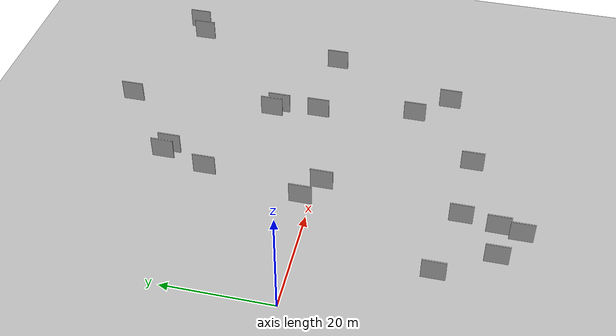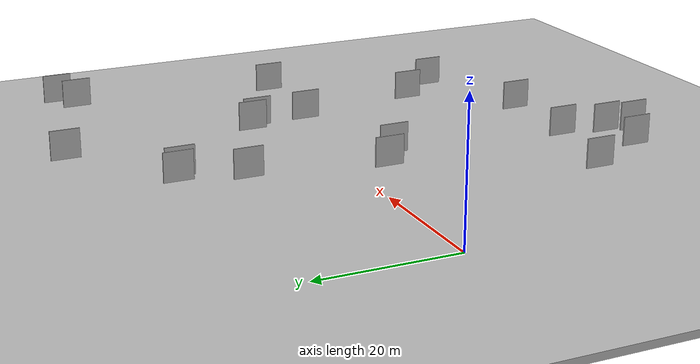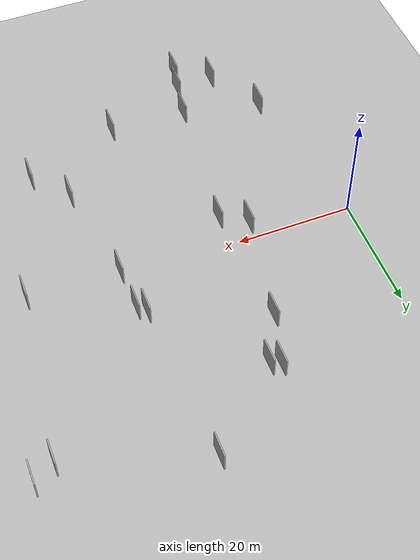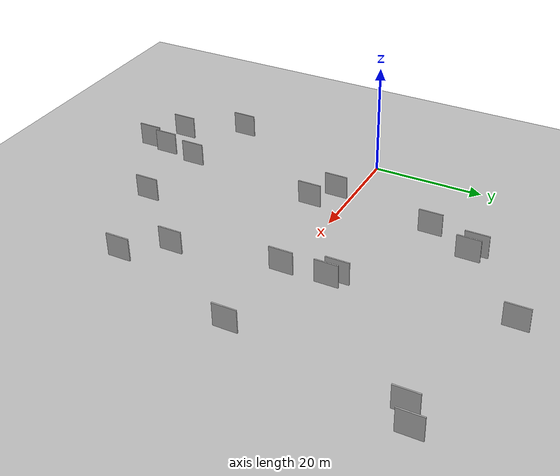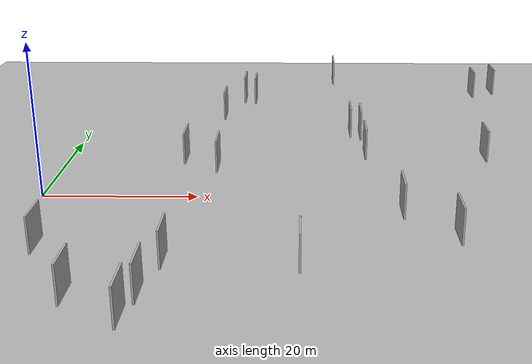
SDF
<?xml version="1.0" encoding="utf-8"?>

<sdf version="1.6">

   <world name="default">

      <gui fullscreen="0">

         <camera name="user_camera">

            <pose>-15 0 4.57585 0 0 0</pose>

            <view_controller>orbit</view_controller>

         </camera>

      </gui>

      <scene>

         <sky>

           <clouds>

             <speed>12</speed>

           </clouds>

         </sky>

         <ambient>0.4 0.4 0.4 1</ambient>

         <background>0.7 0.7 0.7 1</background>

         <shadows>1</shadows>

      </scene>

      <gravity>0 0 -9.8066</gravity>

      <magnetic_field>6e-06 2.3e-05 -4.2e-05</magnetic_field>

      <physics default="0" name="default_physics" type="ode">

         <ode>

            <solver>

               <type>quick</type>

               <iters>10</iters>

               <sor>1.0</sor>

               <use_dynamic_moi_rescaling>0</use_dynamic_moi_rescaling>

            </solver>

            <constraints>

               <cfm>0</cfm>

               <erp>0.2</erp>

               <contact_max_correcting_vel>100</contact_max_correcting_vel>

               <contact_surface_layer>0.001</contact_surface_layer>

            </constraints>

         </ode>

         <max_step_size>0.004</max_step_size>

         <real_time_factor>1</real_time_factor>

         <real_time_update_rate>250</real_time_update_rate>

      </physics>

      <light name="sun" type="directional">

         <cast_shadows>1</cast_shadows>

         <pose>0 0 10 0 0 0</pose>

         <diffuse>0.8 0.8 0.8 1</diffuse>

         <specular>0.2 0.2 0.2 1</specular>

         <attenuation>

            <range>1000</range>

            <constant>0.9</constant>

            <linear>0.01</linear>

            <quadratic>0.001</quadratic>

         </attenuation>

         <direction>-0.5 0.1 -0.9</direction>

      </light>

      <include>

         <name>ground_plane_1</name>

         <uri>model://HANNAS_ground_plane</uri>

         <pose>0 0 0  0 0 0</pose>

      </include>

      <include>

         <name>ground_plane_2</name>

         <uri>model://HANNAS_ground_plane</uri>

         <pose>100 0 0  0 0 0</pose>

      </include>

      <model name="HANNAS_wall_1">

         <static>1</static>

         <pose frame="">38.3655 37.7115 5.0 0.000000 0.000000 1.570796</pose>

         <link name="link">

            <pose frame="">0 0 2.00 0 0 0</pose>

            <collision name="collision">

               <geometry>

                  <box>

                     <size>4.00 0.2 4.00</size>

                  </box>

               </geometry>

               <max_contacts>10</max_contacts>

               <surface>

                  <contact>

                     <ode/>

                  </contact>

                  <bounce/>

                  <friction>

                     <torsional>

                        <ode/>

                     </torsional>

                     <ode/>

                  </friction>

               </surface>

            </collision>

            <visual name="visual">

               <cast_shadows>0</cast_shadows>

               <geometry>

                  <box>

                     <size>4.00 0.2 4.00</size>

                  </box>

               </geometry>

               <material>

                  <script>

                     <uri>model://HANNAS_wall/materials/scripts</uri>

                     <uri>model://HANNAS_wall/materials/textures</uri>

                     <name>vrc/HANNAS_wall</name>

                  </script>

               </material>

            </visual>

            <self_collide>0</self_collide>

            <enable_wind>0</enable_wind>

            <kinematic>0</kinematic>

         </link>

      </model>

      <model name="HANNAS_wall_2">

         <static>1</static>

         <pose frame="">56.5113 1.9569 5.0 0.000000 0.000000 1.570796</pose>

         <link name="link">

            <pose frame="">0 0 2.00 0 0 0</pose>

            <collision name="collision">

               <geometry>

                  <box>

                     <size>4.00 0.2 4.00</size>

                  </box>

               </geometry>

               <max_contacts>10</max_contacts>

               <surface>

                  <contact>

                     <ode/>

                  </contact>

                  <bounce/>

                  <friction>

                     <torsional>

                        <ode/>

                     </torsional>

                     <ode/>

                  </friction>

               </surface>

            </collision>

            <visual name="visual">

               <cast_shadows>0</cast_shadows>

               <geometry>

                  <box>

                     <size>4.00 0.2 4.00</size>

                  </box>

               </geometry>

               <material>

                  <script>

                     <uri>model://HANNAS_wall/materials/scripts</uri>

                     <uri>model://HANNAS_wall/materials/textures</uri>

                     <name>vrc/HANNAS_wall</name>

                  </script>

               </material>

            </visual>

            <self_collide>0</self_collide>

            <enable_wind>0</enable_wind>

            <kinematic>0</kinematic>

         </link>

      </model>

      <model name="HANNAS_wall_3">

         <static>1</static>

         <pose frame="">24.4101 27.0562 5.0 0.000000 0.000000 1.570796</pose>

         <link name="link">

            <pose frame="">0 0 2.00 0 0 0</pose>

            <collision name="collision">

               <geometry>

                  <box>

                     <size>4.00 0.2 4.00</size>

                  </box>

               </geometry>

               <max_contacts>10</max_contacts>

               <surface>

                  <contact>

                     <ode/>

                  </contact>

                  <bounce/>

                  <friction>

                     <torsional>

                        <ode/>

                     </torsional>

                     <ode/>

                  </friction>

               </surface>

            </collision>

            <visual name="visual">

               <cast_shadows>0</cast_shadows>

               <geometry>

                  <box>

                     <size>4.00 0.2 4.00</size>

                  </box>

               </geometry>

               <material>

                  <script>

                     <uri>model://HANNAS_wall/materials/scripts</uri>

                     <uri>model://HANNAS_wall/materials/textures</uri>

                     <name>vrc/HANNAS_wall</name>

                  </script>

               </material>

            </visual>

            <self_collide>0</self_collide>

            <enable_wind>0</enable_wind>

            <kinematic>0</kinematic>

         </link>

      </model>

      <model name="HANNAS_wall_4">

         <static>1</static>

         <pose frame="">7.0909 -23.5787 5.0 0.000000 0.000000 1.570796</pose>

         <link name="link">

            <pose frame="">0 0 2.00 0 0 0</pose>

            <collision name="collision">

               <geometry>

                  <box>

                     <size>4.00 0.2 4.00</size>

                  </box>

               </geometry>

               <max_contacts>10</max_contacts>

               <surface>

                  <contact>

                     <ode/>

                  </contact>

                  <bounce/>

                  <friction>

                     <torsional>

                        <ode/>

                     </torsional>

                     <ode/>

                  </friction>

               </surface>

            </collision>

            <visual name="visual">

               <cast_shadows>0</cast_shadows>

               <geometry>

                  <box>

                     <size>4.00 0.2 4.00</size>

                  </box>

               </geometry>

               <material>

                  <script>

                     <uri>model://HANNAS_wall/materials/scripts</uri>

                     <uri>model://HANNAS_wall/materials/textures</uri>

                     <name>vrc/HANNAS_wall</name>

                  </script>

               </material>

            </visual>

            <self_collide>0</self_collide>

            <enable_wind>0</enable_wind>

            <kinematic>0</kinematic>

         </link>

      </model>

      <model name="HANNAS_wall_5">

         <static>1</static>

         <pose frame="">22.0409 18.6400 5.0 0.000000 0.000000 1.570796</pose>

         <link name="link">

            <pose frame="">0 0 2.00 0 0 0</pose>

            <collision name="collision">

               <geometry>

                  <box>

                     <size>4.00 0.2 4.00</size>

                  </box>

               </geometry>

               <max_contacts>10</max_contacts>

               <surface>

                  <contact>

                     <ode/>

                  </contact>

                  <bounce/>

                  <friction>

                     <torsional>

                        <ode/>

                     </torsional>

                     <ode/>

                  </friction>

               </surface>

            </collision>

            <visual name="visual">

               <cast_shadows>0</cast_shadows>

               <geometry>

                  <box>

                     <size>4.00 0.2 4.00</size>

                  </box>

               </geometry>

               <material>

                  <script>

                     <uri>model://HANNAS_wall/materials/scripts</uri>

                     <uri>model://HANNAS_wall/materials/textures</uri>

                     <name>vrc/HANNAS_wall</name>

                  </script>

               </material>

            </visual>

            <self_collide>0</self_collide>

            <enable_wind>0</enable_wind>

            <kinematic>0</kinematic>

         </link>

      </model>

      <model name="HANNAS_wall_6">

         <static>1</static>

         <pose frame="">41.2147 9.9140 5.0 0.000000 0.000000 1.570796</pose>

         <link name="link">

            <pose frame="">0 0 2.00 0 0 0</pose>

            <collision name="collision">

               <geometry>

                  <box>

                     <size>4.00 0.2 4.00</size>

                  </box>

               </geometry>

               <max_contacts>10</max_contacts>

               <surface>

                  <contact>

                     <ode/>

                  </contact>

                  <bounce/>

                  <friction>

                     <torsional>

                        <ode/>

                     </torsional>

                     <ode/>

                  </friction>

               </surface>

            </collision>

            <visual name="visual">

               <cast_shadows>0</cast_shadows>

               <geometry>

                  <box>

                     <size>4.00 0.2 4.00</size>

                  </box>

               </geometry>

               <material>

                  <script>

                     <uri>model://HANNAS_wall/materials/scripts</uri>

                     <uri>model://HANNAS_wall/materials/textures</uri>

                     <name>vrc/HANNAS_wall</name>

                  </script>

               </material>

            </visual>

            <self_collide>0</self_collide>

            <enable_wind>0</enable_wind>

            <kinematic>0</kinematic>

         </link>

      </model>

      <model name="HANNAS_wall_7">

         <static>1</static>

         <pose frame="">20.2002 -26.4344 5.0 0.000000 0.000000 1.570796</pose>

         <link name="link">

            <pose frame="">0 0 2.00 0 0 0</pose>

            <collision name="collision">

               <geometry>

                  <box>

                     <size>4.00 0.2 4.00</size>

                  </box>

               </geometry>

               <max_contacts>10</max_contacts>

               <surface>

                  <contact>

                     <ode/>

                  </contact>

                  <bounce/>

                  <friction>

                     <torsional>

                        <ode/>

                     </torsional>

                     <ode/>

                  </friction>

               </surface>

            </collision>

            <visual name="visual">

               <cast_shadows>0</cast_shadows>

               <geometry>

                  <box>

                     <size>4.00 0.2 4.00</size>

                  </box>

               </geometry>

               <material>

                  <script>

                     <uri>model://HANNAS_wall/materials/scripts</uri>

                     <uri>model://HANNAS_wall/materials/textures</uri>

                     <name>vrc/HANNAS_wall</name>

                  </script>

               </material>

            </visual>

            <self_collide>0</self_collide>

            <enable_wind>0</enable_wind>

            <kinematic>0</kinematic>

         </link>

      </model>

      <model name="HANNAS_wall_8">

         <static>1</static>

         <pose frame="">19.0362 -32.7172 5.0 0.000000 0.000000 1.570796</pose>

         <link name="link">

            <pose frame="">0 0 2.00 0 0 0</pose>

            <collision name="collision">

               <geometry>

                  <box>

                     <size>4.00 0.2 4.00</size>

                  </box>

               </geometry>

               <max_contacts>10</max_contacts>

               <surface>

                  <contact>

                     <ode/>

                  </contact>

                  <bounce/>

                  <friction>

                     <torsional>

                        <ode/>

                     </torsional>

                     <ode/>

                  </friction>

               </surface>

            </collision>

            <visual name="visual">

               <cast_shadows>0</cast_shadows>

               <geometry>

                  <box>

                     <size>4.00 0.2 4.00</size>

                  </box>

               </geometry>

               <material>

                  <script>

                     <uri>model://HANNAS_wall/materials/scripts</uri>

                     <uri>model://HANNAS_wall/materials/textures</uri>

                     <name>vrc/HANNAS_wall</name>

                  </script>

               </material>

            </visual>

            <self_collide>0</self_collide>

            <enable_wind>0</enable_wind>

            <kinematic>0</kinematic>

         </link>

      </model>

      <model name="HANNAS_wall_9">

         <static>1</static>

         <pose frame="">60.2746 30.3568 5.0 0.000000 0.000000 1.570796</pose>

         <link name="link">

            <pose frame="">0 0 2.00 0 0 0</pose>

            <collision name="collision">

               <geometry>

                  <box>

                     <size>4.00 0.2 4.00</size>

                  </box>

               </geometry>

               <max_contacts>10</max_contacts>

               <surface>

                  <contact>

                     <ode/>

                  </contact>

                  <bounce/>

                  <friction>

                     <torsional>

                        <ode/>

                     </torsional>

                     <ode/>

                  </friction>

               </surface>

            </collision>

            <visual name="visual">

               <cast_shadows>0</cast_shadows>

               <geometry>

                  <box>

                     <size>4.00 0.2 4.00</size>

                  </box>

               </geometry>

               <material>

                  <script>

                     <uri>model://HANNAS_wall/materials/scripts</uri>

                     <uri>model://HANNAS_wall/materials/textures</uri>

                     <name>vrc/HANNAS_wall</name>

                  </script>

               </material>

            </visual>

            <self_collide>0</self_collide>

            <enable_wind>0</enable_wind>

            <kinematic>0</kinematic>

         </link>

      </model>

      <model name="HANNAS_wall_10">

         <static>1</static>

         <pose frame="">49.3223 -21.0888 5.0 0.000000 0.000000 1.570796</pose>

         <link name="link">

            <pose frame="">0 0 2.00 0 0 0</pose>

            <collision name="collision">

               <geometry>

                  <box>

                     <size>4.00 0.2 4.00</size>

                  </box>

               </geometry>

               <max_contacts>10</max_contacts>

               <surface>

                  <contact>

                     <ode/>

                  </contact>

                  <bounce/>

                  <friction>

                     <torsional>

                        <ode/>

                     </torsional>

                     <ode/>

                  </friction>

               </surface>

            </collision>

            <visual name="visual">

               <cast_shadows>0</cast_shadows>

               <geometry>

                  <box>

                     <size>4.00 0.2 4.00</size>

                  </box>

               </geometry>

               <material>

                  <script>

                     <uri>model://HANNAS_wall/materials/scripts</uri>

                     <uri>model://HANNAS_wall/materials/textures</uri>

                     <name>vrc/HANNAS_wall</name>

                  </script>

               </material>

            </visual>

            <self_collide>0</self_collide>

            <enable_wind>0</enable_wind>

            <kinematic>0</kinematic>

         </link>

      </model>

      <model name="HANNAS_wall_11">

         <static>1</static>

         <pose frame="">44.2575 -15.0906 5.0 0.000000 0.000000 1.570796</pose>

         <link name="link">

            <pose frame="">0 0 2.00 0 0 0</pose>

            <collision name="collision">

               <geometry>

                  <box>

                     <size>4.00 0.2 4.00</size>

                  </box>

               </geometry>

               <max_contacts>10</max_contacts>

               <surface>

                  <contact>

                     <ode/>

                  </contact>

                  <bounce/>

                  <friction>

                     <torsional>

                        <ode/>

                     </torsional>

                     <ode/>

                  </friction>

               </surface>

            </collision>

            <visual name="visual">

               <cast_shadows>0</cast_shadows>

               <geometry>

                  <box>

                     <size>4.00 0.2 4.00</size>

                  </box>

               </geometry>

               <material>

                  <script>

                     <uri>model://HANNAS_wall/materials/scripts</uri>

                     <uri>model://HANNAS_wall/materials/textures</uri>

                     <name>vrc/HANNAS_wall</name>

                  </script>

               </material>

            </visual>

            <self_collide>0</self_collide>

            <enable_wind>0</enable_wind>

            <kinematic>0</kinematic>

         </link>

      </model>

      <model name="HANNAS_wall_12">

         <static>1</static>

         <pose frame="">33.2770 -26.9252 5.0 0.000000 0.000000 1.570796</pose>

         <link name="link">

            <pose frame="">0 0 2.00 0 0 0</pose>

            <collision name="collision">

               <geometry>

                  <box>

                     <size>4.00 0.2 4.00</size>

                  </box>

               </geometry>

               <max_contacts>10</max_contacts>

               <surface>

                  <contact>

                     <ode/>

                  </contact>

                  <bounce/>

                  <friction>

                     <torsional>

                        <ode/>

                     </torsional>

                     <ode/>

                  </friction>

               </surface>

            </collision>

            <visual name="visual">

               <cast_shadows>0</cast_shadows>

               <geometry>

                  <box>

                     <size>4.00 0.2 4.00</size>

                  </box>

               </geometry>

               <material>

                  <script>

                     <uri>model://HANNAS_wall/materials/scripts</uri>

                     <uri>model://HANNAS_wall/materials/textures</uri>

                     <name>vrc/HANNAS_wall</name>

                  </script>

               </material>

            </visual>

            <self_collide>0</self_collide>

            <enable_wind>0</enable_wind>

            <kinematic>0</kinematic>

         </link>

      </model>

      <model name="HANNAS_wall_13">

         <static>1</static>

         <pose frame="">18.2216 -36.5539 5.0 0.000000 0.000000 1.570796</pose>

         <link name="link">

            <pose frame="">0 0 2.00 0 0 0</pose>

            <collision name="collision">

               <geometry>

                  <box>

                     <size>4.00 0.2 4.00</size>

                  </box>

               </geometry>

               <max_contacts>10</max_contacts>

               <surface>

                  <contact>

                     <ode/>

                  </contact>

                  <bounce/>

                  <friction>

                     <torsional>

                        <ode/>

                     </torsional>

                     <ode/>

                  </friction>

               </surface>

            </collision>

            <visual name="visual">

               <cast_shadows>0</cast_shadows>

               <geometry>

                  <box>

                     <size>4.00 0.2 4.00</size>

                  </box>

               </geometry>

               <material>

                  <script>

                     <uri>model://HANNAS_wall/materials/scripts</uri>

                     <uri>model://HANNAS_wall/materials/textures</uri>

                     <name>vrc/HANNAS_wall</name>

                  </script>

               </material>

            </visual>

            <self_collide>0</self_collide>

            <enable_wind>0</enable_wind>

            <kinematic>0</kinematic>

         </link>

      </model>

      <model name="HANNAS_wall_14">

         <static>1</static>

         <pose frame="">22.9792 -2.1278 5.0 0.000000 0.000000 1.570796</pose>

         <link name="link">

            <pose frame="">0 0 2.00 0 0 0</pose>

            <collision name="collision">

               <geometry>

                  <box>

                     <size>4.00 0.2 4.00</size>

                  </box>

               </geometry>

               <max_contacts>10</max_contacts>

               <surface>

                  <contact>

                     <ode/>

                  </contact>

                  <bounce/>

                  <friction>

                     <torsional>

                        <ode/>

                     </torsional>

                     <ode/>

                  </friction>

               </surface>

            </collision>

            <visual name="visual">

               <cast_shadows>0</cast_shadows>

               <geometry>

                  <box>

                     <size>4.00 0.2 4.00</size>

                  </box>

               </geometry>

               <material>

                  <script>

                     <uri>model://HANNAS_wall/materials/scripts</uri>

                     <uri>model://HANNAS_wall/materials/textures</uri>

                     <name>vrc/HANNAS_wall</name>

                  </script>

               </material>

            </visual>

            <self_collide>0</self_collide>

            <enable_wind>0</enable_wind>

            <kinematic>0</kinematic>

         </link>

      </model>

      <model name="HANNAS_wall_15">

         <static>1</static>

         <pose frame="">26.0284 26.3030 5.0 0.000000 0.000000 1.570796</pose>

         <link name="link">

            <pose frame="">0 0 2.00 0 0 0</pose>

            <collision name="collision">

               <geometry>

                  <box>

                     <size>4.00 0.2 4.00</size>

                  </box>

               </geometry>

               <max_contacts>10</max_contacts>

               <surface>

                  <contact>

                     <ode/>

                  </contact>

                  <bounce/>

                  <friction>

                     <torsional>

                        <ode/>

                     </torsional>

                     <ode/>

                  </friction>

               </surface>

            </collision>

            <visual name="visual">

               <cast_shadows>0</cast_shadows>

               <geometry>

                  <box>

                     <size>4.00 0.2 4.00</size>

                  </box>

               </geometry>

               <material>

                  <script>

                     <uri>model://HANNAS_wall/materials/scripts</uri>

                     <uri>model://HANNAS_wall/materials/textures</uri>

                     <name>vrc/HANNAS_wall</name>

                  </script>

               </material>

            </visual>

            <self_collide>0</self_collide>

            <enable_wind>0</enable_wind>

            <kinematic>0</kinematic>

         </link>

      </model>

      <model name="HANNAS_wall_16">

         <static>1</static>

         <pose frame="">12.5636 -33.0045 5.0 0.000000 0.000000 1.570796</pose>

         <link name="link">

            <pose frame="">0 0 2.00 0 0 0</pose>

            <collision name="collision">

               <geometry>

                  <box>

                     <size>4.00 0.2 4.00</size>

                  </box>

               </geometry>

               <max_contacts>10</max_contacts>

               <surface>

                  <contact>

                     <ode/>

                  </contact>

                  <bounce/>

                  <friction>

                     <torsional>

                        <ode/>

                     </torsional>

                     <ode/>

                  </friction>

               </surface>

            </collision>

            <visual name="visual">

               <cast_shadows>0</cast_shadows>

               <geometry>

                  <box>

                     <size>4.00 0.2 4.00</size>

                  </box>

               </geometry>

               <material>

                  <script>

                     <uri>model://HANNAS_wall/materials/scripts</uri>

                     <uri>model://HANNAS_wall/materials/textures</uri>

                     <name>vrc/HANNAS_wall</name>

                  </script>

               </material>

            </visual>

            <self_collide>0</self_collide>

            <enable_wind>0</enable_wind>

            <kinematic>0</kinematic>

         </link>

      </model>

      <model name="HANNAS_wall_17">

         <static>1</static>

         <pose frame="">63.7279 32.3004 5.0 0.000000 0.000000 1.570796</pose>

         <link name="link">

            <pose frame="">0 0 2.00 0 0 0</pose>

            <collision name="collision">

               <geometry>

                  <box>

                     <size>4.00 0.2 4.00</size>

                  </box>

               </geometry>

               <max_contacts>10</max_contacts>

               <surface>

                  <contact>

                     <ode/>

                  </contact>

                  <bounce/>

                  <friction>

                     <torsional>

                        <ode/>

                     </torsional>

                     <ode/>

                  </friction>

               </surface>

            </collision>

            <visual name="visual">

               <cast_shadows>0</cast_shadows>

               <geometry>

                  <box>

                     <size>4.00 0.2 4.00</size>

                  </box>

               </geometry>

               <material>

                  <script>

                     <uri>model://HANNAS_wall/materials/scripts</uri>

                     <uri>model://HANNAS_wall/materials/textures</uri>

                     <name>vrc/HANNAS_wall</name>

                  </script>

               </material>

            </visual>

            <self_collide>0</self_collide>

            <enable_wind>0</enable_wind>

            <kinematic>0</kinematic>

         </link>

      </model>

      <model name="HANNAS_wall_18">

         <static>1</static>

         <pose frame="">18.7157 0.6243 5.0 0.000000 0.000000 1.570796</pose>

         <link name="link">

            <pose frame="">0 0 2.00 0 0 0</pose>

            <collision name="collision">

               <geometry>

                  <box>

                     <size>4.00 0.2 4.00</size>

                  </box>

               </geometry>

               <max_contacts>10</max_contacts>

               <surface>

                  <contact>

                     <ode/>

                  </contact>

                  <bounce/>

                  <friction>

                     <torsional>

                        <ode/>

                     </torsional>

                     <ode/>

                  </friction>

               </surface>

            </collision>

            <visual name="visual">

               <cast_shadows>0</cast_shadows>

               <geometry>

                  <box>

                     <size>4.00 0.2 4.00</size>

                  </box>

               </geometry>

               <material>

                  <script>

                     <uri>model://HANNAS_wall/materials/scripts</uri>

                     <uri>model://HANNAS_wall/materials/textures</uri>

                     <name>vrc/HANNAS_wall</name>

                  </script>

               </material>

            </visual>

            <self_collide>0</self_collide>

            <enable_wind>0</enable_wind>

            <kinematic>0</kinematic>

         </link>

      </model>

      <model name="HANNAS_wall_19">

         <static>1</static>

         <pose frame="">39.8920 11.0665 5.0 0.000000 0.000000 1.570796</pose>

         <link name="link">

            <pose frame="">0 0 2.00 0 0 0</pose>

            <collision name="collision">

               <geometry>

                  <box>

                     <size>4.00 0.2 4.00</size>

                  </box>

               </geometry>

               <max_contacts>10</max_contacts>

               <surface>

                  <contact>

                     <ode/>

                  </contact>

                  <bounce/>

                  <friction>

                     <torsional>

                        <ode/>

                     </torsional>

                     <ode/>

                  </friction>

               </surface>

            </collision>

            <visual name="visual">

               <cast_shadows>0</cast_shadows>

               <geometry>

                  <box>

                     <size>4.00 0.2 4.00</size>

                  </box>

               </geometry>

               <material>

                  <script>

                     <uri>model://HANNAS_wall/materials/scripts</uri>

                     <uri>model://HANNAS_wall/materials/textures</uri>

                     <name>vrc/HANNAS_wall</name>

                  </script>

               </material>

            </visual>

            <self_collide>0</self_collide>

            <enable_wind>0</enable_wind>

            <kinematic>0</kinematic>

         </link>

      </model>

      <model name="HANNAS_wall_20">

         <static>1</static>

         <pose frame="">41.3769 2.5176 5.0 0.000000 0.000000 1.570796</pose>

         <link name="link">

            <pose frame="">0 0 2.00 0 0 0</pose>

            <collision name="collision">

               <geometry>

                  <box>

                     <size>4.00 0.2 4.00</size>

                  </box>

               </geometry>

               <max_contacts>10</max_contacts>

               <surface>

                  <contact>

                     <ode/>

                  </contact>

                  <bounce/>

                  <friction>

                     <torsional>

                        <ode/>

                     </torsional>

                     <ode/>

                  </friction>

               </surface>

            </collision>

            <visual name="visual">

               <cast_shadows>0</cast_shadows>

               <geometry>

                  <box>

                     <size>4.00 0.2 4.00</size>

                  </box>

               </geometry>

               <material>

                  <script>

                     <uri>model://HANNAS_wall/materials/scripts</uri>

                     <uri>model://HANNAS_wall/materials/textures</uri>

                     <name>vrc/HANNAS_wall</name>

                  </script>

               </material>

            </visual>

            <self_collide>0</self_collide>

            <enable_wind>0</enable_wind>

            <kinematic>0</kinematic>

         </link>

      </model>

   </world>

</sdf>

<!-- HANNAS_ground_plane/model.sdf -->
<sdf version="1.4">
<model name="HANNAS_ground_plane">
  <static>true</static>
    <link name="link">
      <collision name="collision">
        <geometry>
          <plane>
            <normal>0 0 1</normal>
            <size>1000 1000</size>
          </plane>
        </geometry>
        <surface>
          <friction>
            <ode>
              <mu>100</mu>
              <mu2>50</mu2>
            </ode>
          </friction>
        </surface>
      </collision>
      <visual name="visual">
        <cast_shadows>false</cast_shadows>
        <geometry>
          <plane>
            <normal>0 0 1</normal>
            <size>1000 1000</size>
          </plane>
        </geometry>
        <material>
          <script>
            <uri>model://HANNAS_ground_plane/materials/scripts/HANNAS_ground_plane.material</uri>
	    <uri>model://HANNAS_ground_plane/materials/textures</uri>
            <name>HANNASGroundPlane/Image</name>
          </script>
        </material>
      </visual>
    </link>
  </model>
</sdf>
